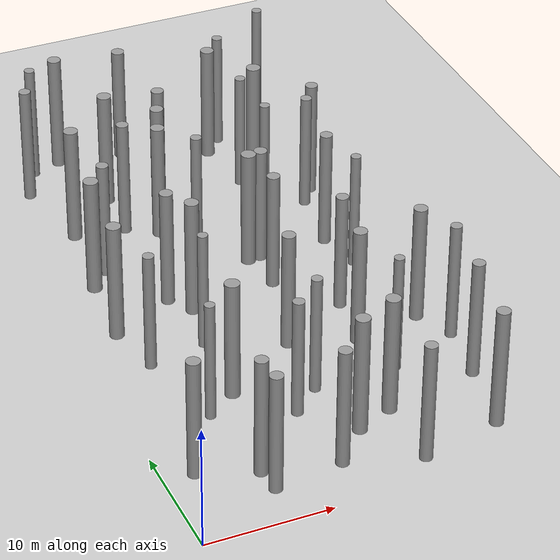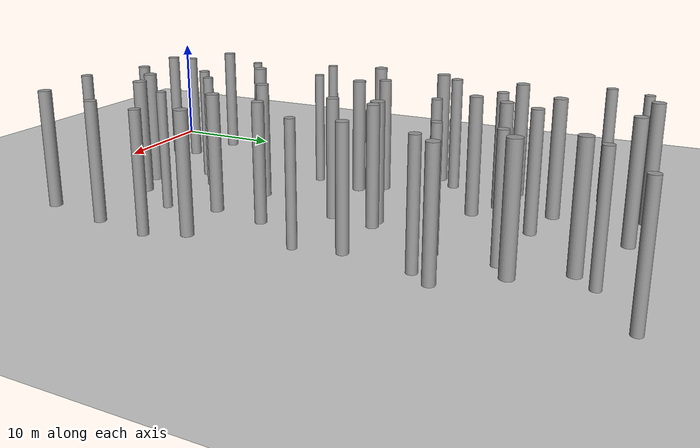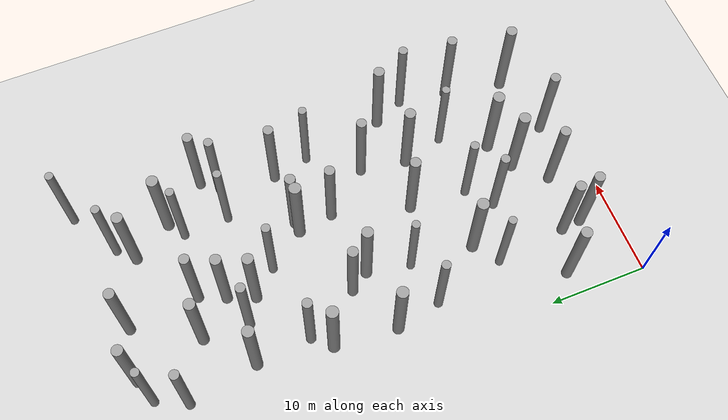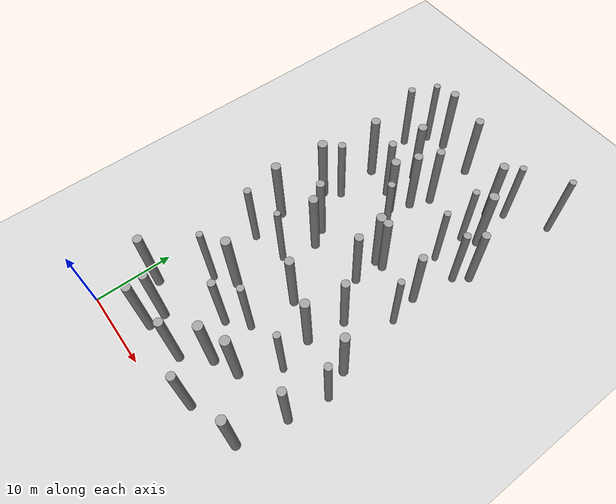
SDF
<sdf version="1.5">
 <world name="default">
  <include><uri>model://sun</uri></include>
  <include><uri>model://ground_plane</uri></include>
  <include><uri>model://asphalt_plane</uri></include>
  <model name="unit_cylinder_0">
   <pose>6.78198 5.60317 5.02000 0 -0 0</pose>
   <link name="link">
    <inertial>
     <mass>100</mass>
     <inertia><ixx>20</ixx><ixy>0</ixy><ixz>0</ixz><iyy>20</iyy><iyz>0</iyz><izz>20</izz></inertia>
    </inertial>
    <collision name="collision">
     <geometry><cylinder><radius>0.523</radius><length>10.000</length></cylinder></geometry>
    </collision>
    <visual name="visual">
     <geometry><cylinder><radius>0.523</radius><length>10.000</length></cylinder></geometry>
     <material>
      <script><name>Gazebo/Grey</name><uri>file://media/materials/scripts/gazebo.material</uri></script>
     </material>
    </visual>
   </link>
  </model>
  <model name="unit_cylinder_1">
   <pose>7.00327 3.52950 5.02000 0 -0 0</pose>
   <link name="link">
    <inertial>
     <mass>100</mass>
     <inertia><ixx>20</ixx><ixy>0</ixy><ixz>0</ixz><iyy>20</iyy><iyz>0</iyz><izz>20</izz></inertia>
    </inertial>
    <collision name="collision">
     <geometry><cylinder><radius>0.523</radius><length>10.000</length></cylinder></geometry>
    </collision>
    <visual name="visual">
     <geometry><cylinder><radius>0.523</radius><length>10.000</length></cylinder></geometry>
     <material>
      <script><name>Gazebo/Grey</name><uri>file://media/materials/scripts/gazebo.material</uri></script>
     </material>
    </visual>
   </link>
  </model>
  <model name="unit_cylinder_2">
   <pose>12.53884 4.29364 5.02000 0 -0 0</pose>
   <link name="link">
    <inertial>
     <mass>100</mass>
     <inertia><ixx>20</ixx><ixy>0</ixy><ixz>0</ixz><iyy>20</iyy><iyz>0</iyz><izz>20</izz></inertia>
    </inertial>
    <collision name="collision">
     <geometry><cylinder><radius>0.518</radius><length>10.000</length></cylinder></geometry>
    </collision>
    <visual name="visual">
     <geometry><cylinder><radius>0.518</radius><length>10.000</length></cylinder></geometry>
     <material>
      <script><name>Gazebo/Grey</name><uri>file://media/materials/scripts/gazebo.material</uri></script>
     </material>
    </visual>
   </link>
  </model>
  <model name="unit_cylinder_3">
   <pose>18.27836 2.49734 5.02000 0 -0 0</pose>
   <link name="link">
    <inertial>
     <mass>100</mass>
     <inertia><ixx>20</ixx><ixy>0</ixy><ixz>0</ixz><iyy>20</iyy><iyz>0</iyz><izz>20</izz></inertia>
    </inertial>
    <collision name="collision">
     <geometry><cylinder><radius>0.497</radius><length>10.000</length></cylinder></geometry>
    </collision>
    <visual name="visual">
     <geometry><cylinder><radius>0.497</radius><length>10.000</length></cylinder></geometry>
     <material>
      <script><name>Gazebo/Grey</name><uri>file://media/materials/scripts/gazebo.material</uri></script>
     </material>
    </visual>
   </link>
  </model>
  <model name="unit_cylinder_4">
   <pose>24.80579 4.12080 5.02000 0 -0 0</pose>
   <link name="link">
    <inertial>
     <mass>100</mass>
     <inertia><ixx>20</ixx><ixy>0</ixy><ixz>0</ixz><iyy>20</iyy><iyz>0</iyz><izz>20</izz></inertia>
    </inertial>
    <collision name="collision">
     <geometry><cylinder><radius>0.541</radius><length>10.000</length></cylinder></geometry>
    </collision>
    <visual name="visual">
     <geometry><cylinder><radius>0.541</radius><length>10.000</length></cylinder></geometry>
     <material>
      <script><name>Gazebo/Grey</name><uri>file://media/materials/scripts/gazebo.material</uri></script>
     </material>
    </visual>
   </link>
  </model>
  <model name="unit_cylinder_10">
   <pose>2.38377 7.27922 5.02000 0 -0 0</pose>
   <link name="link">
    <inertial>
     <mass>100</mass>
     <inertia><ixx>20</ixx><ixy>0</ixy><ixz>0</ixz><iyy>20</iyy><iyz>0</iyz><izz>20</izz></inertia>
    </inertial>
    <collision name="collision">
     <geometry><cylinder><radius>0.546</radius><length>10.000</length></cylinder></geometry>
    </collision>
    <visual name="visual">
     <geometry><cylinder><radius>0.546</radius><length>10.000</length></cylinder></geometry>
     <material>
      <script><name>Gazebo/Grey</name><uri>file://media/materials/scripts/gazebo.material</uri></script>
     </material>
    </visual>
   </link>
  </model>
  <model name="unit_cylinder_11">
   <pose>11.96303 10.88422 5.02000 0 -0 0</pose>
   <link name="link">
    <inertial>
     <mass>100</mass>
     <inertia><ixx>20</ixx><ixy>0</ixy><ixz>0</ixz><iyy>20</iyy><iyz>0</iyz><izz>20</izz></inertia>
    </inertial>
    <collision name="collision">
     <geometry><cylinder><radius>0.463</radius><length>10.000</length></cylinder></geometry>
    </collision>
    <visual name="visual">
     <geometry><cylinder><radius>0.463</radius><length>10.000</length></cylinder></geometry>
     <material>
      <script><name>Gazebo/Grey</name><uri>file://media/materials/scripts/gazebo.material</uri></script>
     </material>
    </visual>
   </link>
  </model>
  <model name="unit_cylinder_12">
   <pose>15.30151 7.25706 5.02000 0 -0 0</pose>
   <link name="link">
    <inertial>
     <mass>100</mass>
     <inertia><ixx>20</ixx><ixy>0</ixy><ixz>0</ixz><iyy>20</iyy><iyz>0</iyz><izz>20</izz></inertia>
    </inertial>
    <collision name="collision">
     <geometry><cylinder><radius>0.576</radius><length>10.000</length></cylinder></geometry>
    </collision>
    <visual name="visual">
     <geometry><cylinder><radius>0.576</radius><length>10.000</length></cylinder></geometry>
     <material>
      <script><name>Gazebo/Grey</name><uri>file://media/materials/scripts/gazebo.material</uri></script>
     </material>
    </visual>
   </link>
  </model>
  <model name="unit_cylinder_13">
   <pose>18.31864 8.57995 5.02000 0 -0 0</pose>
   <link name="link">
    <inertial>
     <mass>100</mass>
     <inertia><ixx>20</ixx><ixy>0</ixy><ixz>0</ixz><iyy>20</iyy><iyz>0</iyz><izz>20</izz></inertia>
    </inertial>
    <collision name="collision">
     <geometry><cylinder><radius>0.579</radius><length>10.000</length></cylinder></geometry>
    </collision>
    <visual name="visual">
     <geometry><cylinder><radius>0.579</radius><length>10.000</length></cylinder></geometry>
     <material>
      <script><name>Gazebo/Grey</name><uri>file://media/materials/scripts/gazebo.material</uri></script>
     </material>
    </visual>
   </link>
  </model>
  <model name="unit_cylinder_14">
   <pose>25.96653 10.12796 5.02000 0 -0 0</pose>
   <link name="link">
    <inertial>
     <mass>100</mass>
     <inertia><ixx>20</ixx><ixy>0</ixy><ixz>0</ixz><iyy>20</iyy><iyz>0</iyz><izz>20</izz></inertia>
    </inertial>
    <collision name="collision">
     <geometry><cylinder><radius>0.497</radius><length>10.000</length></cylinder></geometry>
    </collision>
    <visual name="visual">
     <geometry><cylinder><radius>0.497</radius><length>10.000</length></cylinder></geometry>
     <material>
      <script><name>Gazebo/Grey</name><uri>file://media/materials/scripts/gazebo.material</uri></script>
     </material>
    </visual>
   </link>
  </model>
  <model name="unit_cylinder_20">
   <pose>5.97836 13.00157 5.02000 0 -0 0</pose>
   <link name="link">
    <inertial>
     <mass>100</mass>
     <inertia><ixx>20</ixx><ixy>0</ixy><ixz>0</ixz><iyy>20</iyy><iyz>0</iyz><izz>20</izz></inertia>
    </inertial>
    <collision name="collision">
     <geometry><cylinder><radius>0.407</radius><length>10.000</length></cylinder></geometry>
    </collision>
    <visual name="visual">
     <geometry><cylinder><radius>0.407</radius><length>10.000</length></cylinder></geometry>
     <material>
      <script><name>Gazebo/Grey</name><uri>file://media/materials/scripts/gazebo.material</uri></script>
     </material>
    </visual>
   </link>
  </model>
  <model name="unit_cylinder_21">
   <pose>8.47928 14.81799 5.02000 0 -0 0</pose>
   <link name="link">
    <inertial>
     <mass>100</mass>
     <inertia><ixx>20</ixx><ixy>0</ixy><ixz>0</ixz><iyy>20</iyy><iyz>0</iyz><izz>20</izz></inertia>
    </inertial>
    <collision name="collision">
     <geometry><cylinder><radius>0.591</radius><length>10.000</length></cylinder></geometry>
    </collision>
    <visual name="visual">
     <geometry><cylinder><radius>0.591</radius><length>10.000</length></cylinder></geometry>
     <material>
      <script><name>Gazebo/Grey</name><uri>file://media/materials/scripts/gazebo.material</uri></script>
     </material>
    </visual>
   </link>
  </model>
  <model name="unit_cylinder_22">
   <pose>14.33526 12.97418 5.02000 0 -0 0</pose>
   <link name="link">
    <inertial>
     <mass>100</mass>
     <inertia><ixx>20</ixx><ixy>0</ixy><ixz>0</ixz><iyy>20</iyy><iyz>0</iyz><izz>20</izz></inertia>
    </inertial>
    <collision name="collision">
     <geometry><cylinder><radius>0.434</radius><length>10.000</length></cylinder></geometry>
    </collision>
    <visual name="visual">
     <geometry><cylinder><radius>0.434</radius><length>10.000</length></cylinder></geometry>
     <material>
      <script><name>Gazebo/Grey</name><uri>file://media/materials/scripts/gazebo.material</uri></script>
     </material>
    </visual>
   </link>
  </model>
  <model name="unit_cylinder_23">
   <pose>20.95681 13.01195 5.02000 0 -0 0</pose>
   <link name="link">
    <inertial>
     <mass>100</mass>
     <inertia><ixx>20</ixx><ixy>0</ixy><ixz>0</ixz><iyy>20</iyy><iyz>0</iyz><izz>20</izz></inertia>
    </inertial>
    <collision name="collision">
     <geometry><cylinder><radius>0.402</radius><length>10.000</length></cylinder></geometry>
    </collision>
    <visual name="visual">
     <geometry><cylinder><radius>0.402</radius><length>10.000</length></cylinder></geometry>
     <material>
      <script><name>Gazebo/Grey</name><uri>file://media/materials/scripts/gazebo.material</uri></script>
     </material>
    </visual>
   </link>
  </model>
  <model name="unit_cylinder_24">
   <pose>26.69320 15.12144 5.02000 0 -0 0</pose>
   <link name="link">
    <inertial>
     <mass>100</mass>
     <inertia><ixx>20</ixx><ixy>0</ixy><ixz>0</ixz><iyy>20</iyy><iyz>0</iyz><izz>20</izz></inertia>
    </inertial>
    <collision name="collision">
     <geometry><cylinder><radius>0.455</radius><length>10.000</length></cylinder></geometry>
    </collision>
    <visual name="visual">
     <geometry><cylinder><radius>0.455</radius><length>10.000</length></cylinder></geometry>
     <material>
      <script><name>Gazebo/Grey</name><uri>file://media/materials/scripts/gazebo.material</uri></script>
     </material>
    </visual>
   </link>
  </model>
  <model name="unit_cylinder_30">
   <pose>4.21066 20.43638 5.02000 0 -0 0</pose>
   <link name="link">
    <inertial>
     <mass>100</mass>
     <inertia><ixx>20</ixx><ixy>0</ixy><ixz>0</ixz><iyy>20</iyy><iyz>0</iyz><izz>20</izz></inertia>
    </inertial>
    <collision name="collision">
     <geometry><cylinder><radius>0.449</radius><length>10.000</length></cylinder></geometry>
    </collision>
    <visual name="visual">
     <geometry><cylinder><radius>0.449</radius><length>10.000</length></cylinder></geometry>
     <material>
      <script><name>Gazebo/Grey</name><uri>file://media/materials/scripts/gazebo.material</uri></script>
     </material>
    </visual>
   </link>
  </model>
  <model name="unit_cylinder_31">
   <pose>8.88682 21.38482 5.02000 0 -0 0</pose>
   <link name="link">
    <inertial>
     <mass>100</mass>
     <inertia><ixx>20</ixx><ixy>0</ixy><ixz>0</ixz><iyy>20</iyy><iyz>0</iyz><izz>20</izz></inertia>
    </inertial>
    <collision name="collision">
     <geometry><cylinder><radius>0.407</radius><length>10.000</length></cylinder></geometry>
    </collision>
    <visual name="visual">
     <geometry><cylinder><radius>0.407</radius><length>10.000</length></cylinder></geometry>
     <material>
      <script><name>Gazebo/Grey</name><uri>file://media/materials/scripts/gazebo.material</uri></script>
     </material>
    </visual>
   </link>
  </model>
  <model name="unit_cylinder_32">
   <pose>14.76007 18.90415 5.02000 0 -0 0</pose>
   <link name="link">
    <inertial>
     <mass>100</mass>
     <inertia><ixx>20</ixx><ixy>0</ixy><ixz>0</ixz><iyy>20</iyy><iyz>0</iyz><izz>20</izz></inertia>
    </inertial>
    <collision name="collision">
     <geometry><cylinder><radius>0.541</radius><length>10.000</length></cylinder></geometry>
    </collision>
    <visual name="visual">
     <geometry><cylinder><radius>0.541</radius><length>10.000</length></cylinder></geometry>
     <material>
      <script><name>Gazebo/Grey</name><uri>file://media/materials/scripts/gazebo.material</uri></script>
     </material>
    </visual>
   </link>
  </model>
  <model name="unit_cylinder_33">
   <pose>19.83164 17.28732 5.02000 0 -0 0</pose>
   <link name="link">
    <inertial>
     <mass>100</mass>
     <inertia><ixx>20</ixx><ixy>0</ixy><ixz>0</ixz><iyy>20</iyy><iyz>0</iyz><izz>20</izz></inertia>
    </inertial>
    <collision name="collision">
     <geometry><cylinder><radius>0.552</radius><length>10.000</length></cylinder></geometry>
    </collision>
    <visual name="visual">
     <geometry><cylinder><radius>0.552</radius><length>10.000</length></cylinder></geometry>
     <material>
      <script><name>Gazebo/Grey</name><uri>file://media/materials/scripts/gazebo.material</uri></script>
     </material>
    </visual>
   </link>
  </model>
  <model name="unit_cylinder_34">
   <pose>25.30924 18.27673 5.02000 0 -0 0</pose>
   <link name="link">
    <inertial>
     <mass>100</mass>
     <inertia><ixx>20</ixx><ixy>0</ixy><ixz>0</ixz><iyy>20</iyy><iyz>0</iyz><izz>20</izz></inertia>
    </inertial>
    <collision name="collision">
     <geometry><cylinder><radius>0.543</radius><length>10.000</length></cylinder></geometry>
    </collision>
    <visual name="visual">
     <geometry><cylinder><radius>0.543</radius><length>10.000</length></cylinder></geometry>
     <material>
      <script><name>Gazebo/Grey</name><uri>file://media/materials/scripts/gazebo.material</uri></script>
     </material>
    </visual>
   </link>
  </model>
  <model name="unit_cylinder_40">
   <pose>3.25371 25.08927 5.02000 0 -0 0</pose>
   <link name="link">
    <inertial>
     <mass>100</mass>
     <inertia><ixx>20</ixx><ixy>0</ixy><ixz>0</ixz><iyy>20</iyy><iyz>0</iyz><izz>20</izz></inertia>
    </inertial>
    <collision name="collision">
     <geometry><cylinder><radius>0.580</radius><length>10.000</length></cylinder></geometry>
    </collision>
    <visual name="visual">
     <geometry><cylinder><radius>0.580</radius><length>10.000</length></cylinder></geometry>
     <material>
      <script><name>Gazebo/Grey</name><uri>file://media/materials/scripts/gazebo.material</uri></script>
     </material>
    </visual>
   </link>
  </model>
  <model name="unit_cylinder_41">
   <pose>9.79973 25.79322 5.02000 0 -0 0</pose>
   <link name="link">
    <inertial>
     <mass>100</mass>
     <inertia><ixx>20</ixx><ixy>0</ixy><ixz>0</ixz><iyy>20</iyy><iyz>0</iyz><izz>20</izz></inertia>
    </inertial>
    <collision name="collision">
     <geometry><cylinder><radius>0.564</radius><length>10.000</length></cylinder></geometry>
    </collision>
    <visual name="visual">
     <geometry><cylinder><radius>0.564</radius><length>10.000</length></cylinder></geometry>
     <material>
      <script><name>Gazebo/Grey</name><uri>file://media/materials/scripts/gazebo.material</uri></script>
     </material>
    </visual>
   </link>
  </model>
  <model name="unit_cylinder_42">
   <pose>16.95326 26.72882 5.02000 0 -0 0</pose>
   <link name="link">
    <inertial>
     <mass>100</mass>
     <inertia><ixx>20</ixx><ixy>0</ixy><ixz>0</ixz><iyy>20</iyy><iyz>0</iyz><izz>20</izz></inertia>
    </inertial>
    <collision name="collision">
     <geometry><cylinder><radius>0.514</radius><length>10.000</length></cylinder></geometry>
    </collision>
    <visual name="visual">
     <geometry><cylinder><radius>0.514</radius><length>10.000</length></cylinder></geometry>
     <material>
      <script><name>Gazebo/Grey</name><uri>file://media/materials/scripts/gazebo.material</uri></script>
     </material>
    </visual>
   </link>
  </model>
  <model name="unit_cylinder_43">
   <pose>20.57524 22.03343 5.02000 0 -0 0</pose>
   <link name="link">
    <inertial>
     <mass>100</mass>
     <inertia><ixx>20</ixx><ixy>0</ixy><ixz>0</ixz><iyy>20</iyy><iyz>0</iyz><izz>20</izz></inertia>
    </inertial>
    <collision name="collision">
     <geometry><cylinder><radius>0.496</radius><length>10.000</length></cylinder></geometry>
    </collision>
    <visual name="visual">
     <geometry><cylinder><radius>0.496</radius><length>10.000</length></cylinder></geometry>
     <material>
      <script><name>Gazebo/Grey</name><uri>file://media/materials/scripts/gazebo.material</uri></script>
     </material>
    </visual>
   </link>
  </model>
  <model name="unit_cylinder_44">
   <pose>23.97057 26.81925 5.02000 0 -0 0</pose>
   <link name="link">
    <inertial>
     <mass>100</mass>
     <inertia><ixx>20</ixx><ixy>0</ixy><ixz>0</ixz><iyy>20</iyy><iyz>0</iyz><izz>20</izz></inertia>
    </inertial>
    <collision name="collision">
     <geometry><cylinder><radius>0.404</radius><length>10.000</length></cylinder></geometry>
    </collision>
    <visual name="visual">
     <geometry><cylinder><radius>0.404</radius><length>10.000</length></cylinder></geometry>
     <material>
      <script><name>Gazebo/Grey</name><uri>file://media/materials/scripts/gazebo.material</uri></script>
     </material>
    </visual>
   </link>
  </model>
  <model name="unit_cylinder_50">
   <pose>3.85400 31.55602 5.02000 0 -0 0</pose>
   <link name="link">
    <inertial>
     <mass>100</mass>
     <inertia><ixx>20</ixx><ixy>0</ixy><ixz>0</ixz><iyy>20</iyy><iyz>0</iyz><izz>20</izz></inertia>
    </inertial>
    <collision name="collision">
     <geometry><cylinder><radius>0.597</radius><length>10.000</length></cylinder></geometry>
    </collision>
    <visual name="visual">
     <geometry><cylinder><radius>0.597</radius><length>10.000</length></cylinder></geometry>
     <material>
      <script><name>Gazebo/Grey</name><uri>file://media/materials/scripts/gazebo.material</uri></script>
     </material>
    </visual>
   </link>
  </model>
  <model name="unit_cylinder_51">
   <pose>8.51183 27.75091 5.02000 0 -0 0</pose>
   <link name="link">
    <inertial>
     <mass>100</mass>
     <inertia><ixx>20</ixx><ixy>0</ixy><ixz>0</ixz><iyy>20</iyy><iyz>0</iyz><izz>20</izz></inertia>
    </inertial>
    <collision name="collision">
     <geometry><cylinder><radius>0.530</radius><length>10.000</length></cylinder></geometry>
    </collision>
    <visual name="visual">
     <geometry><cylinder><radius>0.530</radius><length>10.000</length></cylinder></geometry>
     <material>
      <script><name>Gazebo/Grey</name><uri>file://media/materials/scripts/gazebo.material</uri></script>
     </material>
    </visual>
   </link>
  </model>
  <model name="unit_cylinder_52">
   <pose>16.43473 30.38376 5.02000 0 -0 0</pose>
   <link name="link">
    <inertial>
     <mass>100</mass>
     <inertia><ixx>20</ixx><ixy>0</ixy><ixz>0</ixz><iyy>20</iyy><iyz>0</iyz><izz>20</izz></inertia>
    </inertial>
    <collision name="collision">
     <geometry><cylinder><radius>0.593</radius><length>10.000</length></cylinder></geometry>
    </collision>
    <visual name="visual">
     <geometry><cylinder><radius>0.593</radius><length>10.000</length></cylinder></geometry>
     <material>
      <script><name>Gazebo/Grey</name><uri>file://media/materials/scripts/gazebo.material</uri></script>
     </material>
    </visual>
   </link>
  </model>
  <model name="unit_cylinder_53">
   <pose>17.50073 30.48200 5.02000 0 -0 0</pose>
   <link name="link">
    <inertial>
     <mass>100</mass>
     <inertia><ixx>20</ixx><ixy>0</ixy><ixz>0</ixz><iyy>20</iyy><iyz>0</iyz><izz>20</izz></inertia>
    </inertial>
    <collision name="collision">
     <geometry><cylinder><radius>0.528</radius><length>10.000</length></cylinder></geometry>
    </collision>
    <visual name="visual">
     <geometry><cylinder><radius>0.528</radius><length>10.000</length></cylinder></geometry>
     <material>
      <script><name>Gazebo/Grey</name><uri>file://media/materials/scripts/gazebo.material</uri></script>
     </material>
    </visual>
   </link>
  </model>
  <model name="unit_cylinder_54">
   <pose>23.17648 30.59649 5.02000 0 -0 0</pose>
   <link name="link">
    <inertial>
     <mass>100</mass>
     <inertia><ixx>20</ixx><ixy>0</ixy><ixz>0</ixz><iyy>20</iyy><iyz>0</iyz><izz>20</izz></inertia>
    </inertial>
    <collision name="collision">
     <geometry><cylinder><radius>0.500</radius><length>10.000</length></cylinder></geometry>
    </collision>
    <visual name="visual">
     <geometry><cylinder><radius>0.500</radius><length>10.000</length></cylinder></geometry>
     <material>
      <script><name>Gazebo/Grey</name><uri>file://media/materials/scripts/gazebo.material</uri></script>
     </material>
    </visual>
   </link>
  </model>
  <model name="unit_cylinder_60">
   <pose>5.44725 33.31540 5.02000 0 -0 0</pose>
   <link name="link">
    <inertial>
     <mass>100</mass>
     <inertia><ixx>20</ixx><ixy>0</ixy><ixz>0</ixz><iyy>20</iyy><iyz>0</iyz><izz>20</izz></inertia>
    </inertial>
    <collision name="collision">
     <geometry><cylinder><radius>0.489</radius><length>10.000</length></cylinder></geometry>
    </collision>
    <visual name="visual">
     <geometry><cylinder><radius>0.489</radius><length>10.000</length></cylinder></geometry>
     <material>
      <script><name>Gazebo/Grey</name><uri>file://media/materials/scripts/gazebo.material</uri></script>
     </material>
    </visual>
   </link>
  </model>
  <model name="unit_cylinder_61">
   <pose>11.37709 36.79684 5.02000 0 -0 0</pose>
   <link name="link">
    <inertial>
     <mass>100</mass>
     <inertia><ixx>20</ixx><ixy>0</ixy><ixz>0</ixz><iyy>20</iyy><iyz>0</iyz><izz>20</izz></inertia>
    </inertial>
    <collision name="collision">
     <geometry><cylinder><radius>0.550</radius><length>10.000</length></cylinder></geometry>
    </collision>
    <visual name="visual">
     <geometry><cylinder><radius>0.550</radius><length>10.000</length></cylinder></geometry>
     <material>
      <script><name>Gazebo/Grey</name><uri>file://media/materials/scripts/gazebo.material</uri></script>
     </material>
    </visual>
   </link>
  </model>
  <model name="unit_cylinder_62">
   <pose>13.62546 34.25820 5.02000 0 -0 0</pose>
   <link name="link">
    <inertial>
     <mass>100</mass>
     <inertia><ixx>20</ixx><ixy>0</ixy><ixz>0</ixz><iyy>20</iyy><iyz>0</iyz><izz>20</izz></inertia>
    </inertial>
    <collision name="collision">
     <geometry><cylinder><radius>0.440</radius><length>10.000</length></cylinder></geometry>
    </collision>
    <visual name="visual">
     <geometry><cylinder><radius>0.440</radius><length>10.000</length></cylinder></geometry>
     <material>
      <script><name>Gazebo/Grey</name><uri>file://media/materials/scripts/gazebo.material</uri></script>
     </material>
    </visual>
   </link>
  </model>
  <model name="unit_cylinder_63">
   <pose>20.52556 36.62485 5.02000 0 -0 0</pose>
   <link name="link">
    <inertial>
     <mass>100</mass>
     <inertia><ixx>20</ixx><ixy>0</ixy><ixz>0</ixz><iyy>20</iyy><iyz>0</iyz><izz>20</izz></inertia>
    </inertial>
    <collision name="collision">
     <geometry><cylinder><radius>0.407</radius><length>10.000</length></cylinder></geometry>
    </collision>
    <visual name="visual">
     <geometry><cylinder><radius>0.407</radius><length>10.000</length></cylinder></geometry>
     <material>
      <script><name>Gazebo/Grey</name><uri>file://media/materials/scripts/gazebo.material</uri></script>
     </material>
    </visual>
   </link>
  </model>
  <model name="unit_cylinder_64">
   <pose>24.02798 36.32609 5.02000 0 -0 0</pose>
   <link name="link">
    <inertial>
     <mass>100</mass>
     <inertia><ixx>20</ixx><ixy>0</ixy><ixz>0</ixz><iyy>20</iyy><iyz>0</iyz><izz>20</izz></inertia>
    </inertial>
    <collision name="collision">
     <geometry><cylinder><radius>0.452</radius><length>10.000</length></cylinder></geometry>
    </collision>
    <visual name="visual">
     <geometry><cylinder><radius>0.452</radius><length>10.000</length></cylinder></geometry>
     <material>
      <script><name>Gazebo/Grey</name><uri>file://media/materials/scripts/gazebo.material</uri></script>
     </material>
    </visual>
   </link>
  </model>
  <model name="unit_cylinder_70">
   <pose>4.93052 39.02753 5.02000 0 -0 0</pose>
   <link name="link">
    <inertial>
     <mass>100</mass>
     <inertia><ixx>20</ixx><ixy>0</ixy><ixz>0</ixz><iyy>20</iyy><iyz>0</iyz><izz>20</izz></inertia>
    </inertial>
    <collision name="collision">
     <geometry><cylinder><radius>0.578</radius><length>10.000</length></cylinder></geometry>
    </collision>
    <visual name="visual">
     <geometry><cylinder><radius>0.578</radius><length>10.000</length></cylinder></geometry>
     <material>
      <script><name>Gazebo/Grey</name><uri>file://media/materials/scripts/gazebo.material</uri></script>
     </material>
    </visual>
   </link>
  </model>
  <model name="unit_cylinder_71">
   <pose>9.00303 38.32814 5.02000 0 -0 0</pose>
   <link name="link">
    <inertial>
     <mass>100</mass>
     <inertia><ixx>20</ixx><ixy>0</ixy><ixz>0</ixz><iyy>20</iyy><iyz>0</iyz><izz>20</izz></inertia>
    </inertial>
    <collision name="collision">
     <geometry><cylinder><radius>0.490</radius><length>10.000</length></cylinder></geometry>
    </collision>
    <visual name="visual">
     <geometry><cylinder><radius>0.490</radius><length>10.000</length></cylinder></geometry>
     <material>
      <script><name>Gazebo/Grey</name><uri>file://media/materials/scripts/gazebo.material</uri></script>
     </material>
    </visual>
   </link>
  </model>
  <model name="unit_cylinder_72">
   <pose>12.38694 39.50701 5.02000 0 -0 0</pose>
   <link name="link">
    <inertial>
     <mass>100</mass>
     <inertia><ixx>20</ixx><ixy>0</ixy><ixz>0</ixz><iyy>20</iyy><iyz>0</iyz><izz>20</izz></inertia>
    </inertial>
    <collision name="collision">
     <geometry><cylinder><radius>0.544</radius><length>10.000</length></cylinder></geometry>
    </collision>
    <visual name="visual">
     <geometry><cylinder><radius>0.544</radius><length>10.000</length></cylinder></geometry>
     <material>
      <script><name>Gazebo/Grey</name><uri>file://media/materials/scripts/gazebo.material</uri></script>
     </material>
    </visual>
   </link>
  </model>
  <model name="unit_cylinder_73">
   <pose>20.36585 41.29245 5.02000 0 -0 0</pose>
   <link name="link">
    <inertial>
     <mass>100</mass>
     <inertia><ixx>20</ixx><ixy>0</ixy><ixz>0</ixz><iyy>20</iyy><iyz>0</iyz><izz>20</izz></inertia>
    </inertial>
    <collision name="collision">
     <geometry><cylinder><radius>0.425</radius><length>10.000</length></cylinder></geometry>
    </collision>
    <visual name="visual">
     <geometry><cylinder><radius>0.425</radius><length>10.000</length></cylinder></geometry>
     <material>
      <script><name>Gazebo/Grey</name><uri>file://media/materials/scripts/gazebo.material</uri></script>
     </material>
    </visual>
   </link>
  </model>
  <model name="unit_cylinder_74">
   <pose>25.25447 38.00733 5.02000 0 -0 0</pose>
   <link name="link">
    <inertial>
     <mass>100</mass>
     <inertia><ixx>20</ixx><ixy>0</ixy><ixz>0</ixz><iyy>20</iyy><iyz>0</iyz><izz>20</izz></inertia>
    </inertial>
    <collision name="collision">
     <geometry><cylinder><radius>0.497</radius><length>10.000</length></cylinder></geometry>
    </collision>
    <visual name="visual">
     <geometry><cylinder><radius>0.497</radius><length>10.000</length></cylinder></geometry>
     <material>
      <script><name>Gazebo/Grey</name><uri>file://media/materials/scripts/gazebo.material</uri></script>
     </material>
    </visual>
   </link>
  </model>
  <model name="unit_cylinder_80">
   <pose>3.60058 46.16587 5.02000 0 -0 0</pose>
   <link name="link">
    <inertial>
     <mass>100</mass>
     <inertia><ixx>20</ixx><ixy>0</ixy><ixz>0</ixz><iyy>20</iyy><iyz>0</iyz><izz>20</izz></inertia>
    </inertial>
    <collision name="collision">
     <geometry><cylinder><radius>0.475</radius><length>10.000</length></cylinder></geometry>
    </collision>
    <visual name="visual">
     <geometry><cylinder><radius>0.475</radius><length>10.000</length></cylinder></geometry>
     <material>
      <script><name>Gazebo/Grey</name><uri>file://media/materials/scripts/gazebo.material</uri></script>
     </material>
    </visual>
   </link>
  </model>
  <model name="unit_cylinder_81">
   <pose>9.21588 43.00077 5.02000 0 -0 0</pose>
   <link name="link">
    <inertial>
     <mass>100</mass>
     <inertia><ixx>20</ixx><ixy>0</ixy><ixz>0</ixz><iyy>20</iyy><iyz>0</iyz><izz>20</izz></inertia>
    </inertial>
    <collision name="collision">
     <geometry><cylinder><radius>0.570</radius><length>10.000</length></cylinder></geometry>
    </collision>
    <visual name="visual">
     <geometry><cylinder><radius>0.570</radius><length>10.000</length></cylinder></geometry>
     <material>
      <script><name>Gazebo/Grey</name><uri>file://media/materials/scripts/gazebo.material</uri></script>
     </material>
    </visual>
   </link>
  </model>
  <model name="unit_cylinder_82">
   <pose>13.47818 42.11097 5.02000 0 -0 0</pose>
   <link name="link">
    <inertial>
     <mass>100</mass>
     <inertia><ixx>20</ixx><ixy>0</ixy><ixz>0</ixz><iyy>20</iyy><iyz>0</iyz><izz>20</izz></inertia>
    </inertial>
    <collision name="collision">
     <geometry><cylinder><radius>0.512</radius><length>10.000</length></cylinder></geometry>
    </collision>
    <visual name="visual">
     <geometry><cylinder><radius>0.512</radius><length>10.000</length></cylinder></geometry>
     <material>
      <script><name>Gazebo/Grey</name><uri>file://media/materials/scripts/gazebo.material</uri></script>
     </material>
    </visual>
   </link>
  </model>
  <model name="unit_cylinder_83">
   <pose>19.65312 46.56141 5.02000 0 -0 0</pose>
   <link name="link">
    <inertial>
     <mass>100</mass>
     <inertia><ixx>20</ixx><ixy>0</ixy><ixz>0</ixz><iyy>20</iyy><iyz>0</iyz><izz>20</izz></inertia>
    </inertial>
    <collision name="collision">
     <geometry><cylinder><radius>0.550</radius><length>10.000</length></cylinder></geometry>
    </collision>
    <visual name="visual">
     <geometry><cylinder><radius>0.550</radius><length>10.000</length></cylinder></geometry>
     <material>
      <script><name>Gazebo/Grey</name><uri>file://media/materials/scripts/gazebo.material</uri></script>
     </material>
    </visual>
   </link>
  </model>
  <model name="unit_cylinder_84">
   <pose>22.05955 42.47276 5.02000 0 -0 0</pose>
   <link name="link">
    <inertial>
     <mass>100</mass>
     <inertia><ixx>20</ixx><ixy>0</ixy><ixz>0</ixz><iyy>20</iyy><iyz>0</iyz><izz>20</izz></inertia>
    </inertial>
    <collision name="collision">
     <geometry><cylinder><radius>0.579</radius><length>10.000</length></cylinder></geometry>
    </collision>
    <visual name="visual">
     <geometry><cylinder><radius>0.579</radius><length>10.000</length></cylinder></geometry>
     <material>
      <script><name>Gazebo/Grey</name><uri>file://media/materials/scripts/gazebo.material</uri></script>
     </material>
    </visual>
   </link>
  </model>
  <model name="unit_cylinder_90">
   <pose>5.05137 49.22791 5.02000 0 -0 0</pose>
   <link name="link">
    <inertial>
     <mass>100</mass>
     <inertia><ixx>20</ixx><ixy>0</ixy><ixz>0</ixz><iyy>20</iyy><iyz>0</iyz><izz>20</izz></inertia>
    </inertial>
    <collision name="collision">
     <geometry><cylinder><radius>0.425</radius><length>10.000</length></cylinder></geometry>
    </collision>
    <visual name="visual">
     <geometry><cylinder><radius>0.425</radius><length>10.000</length></cylinder></geometry>
     <material>
      <script><name>Gazebo/Grey</name><uri>file://media/materials/scripts/gazebo.material</uri></script>
     </material>
    </visual>
   </link>
  </model>
  <model name="unit_cylinder_91">
   <pose>7.48889 50.07477 5.02000 0 -0 0</pose>
   <link name="link">
    <inertial>
     <mass>100</mass>
     <inertia><ixx>20</ixx><ixy>0</ixy><ixz>0</ixz><iyy>20</iyy><iyz>0</iyz><izz>20</izz></inertia>
    </inertial>
    <collision name="collision">
     <geometry><cylinder><radius>0.546</radius><length>10.000</length></cylinder></geometry>
    </collision>
    <visual name="visual">
     <geometry><cylinder><radius>0.546</radius><length>10.000</length></cylinder></geometry>
     <material>
      <script><name>Gazebo/Grey</name><uri>file://media/materials/scripts/gazebo.material</uri></script>
     </material>
    </visual>
   </link>
  </model>
  <model name="unit_cylinder_92">
   <pose>12.78311 49.29923 5.02000 0 -0 0</pose>
   <link name="link">
    <inertial>
     <mass>100</mass>
     <inertia><ixx>20</ixx><ixy>0</ixy><ixz>0</ixz><iyy>20</iyy><iyz>0</iyz><izz>20</izz></inertia>
    </inertial>
    <collision name="collision">
     <geometry><cylinder><radius>0.530</radius><length>10.000</length></cylinder></geometry>
    </collision>
    <visual name="visual">
     <geometry><cylinder><radius>0.530</radius><length>10.000</length></cylinder></geometry>
     <material>
      <script><name>Gazebo/Grey</name><uri>file://media/materials/scripts/gazebo.material</uri></script>
     </material>
    </visual>
   </link>
  </model>
  <model name="unit_cylinder_93">
   <pose>21.20409 48.16676 5.02000 0 -0 0</pose>
   <link name="link">
    <inertial>
     <mass>100</mass>
     <inertia><ixx>20</ixx><ixy>0</ixy><ixz>0</ixz><iyy>20</iyy><iyz>0</iyz><izz>20</izz></inertia>
    </inertial>
    <collision name="collision">
     <geometry><cylinder><radius>0.426</radius><length>10.000</length></cylinder></geometry>
    </collision>
    <visual name="visual">
     <geometry><cylinder><radius>0.426</radius><length>10.000</length></cylinder></geometry>
     <material>
      <script><name>Gazebo/Grey</name><uri>file://media/materials/scripts/gazebo.material</uri></script>
     </material>
    </visual>
   </link>
  </model>
  <model name="unit_cylinder_94">
   <pose>26.12831 51.22474 5.02000 0 -0 0</pose>
   <link name="link">
    <inertial>
     <mass>100</mass>
     <inertia><ixx>20</ixx><ixy>0</ixy><ixz>0</ixz><iyy>20</iyy><iyz>0</iyz><izz>20</izz></inertia>
    </inertial>
    <collision name="collision">
     <geometry><cylinder><radius>0.415</radius><length>10.000</length></cylinder></geometry>
    </collision>
    <visual name="visual">
     <geometry><cylinder><radius>0.415</radius><length>10.000</length></cylinder></geometry>
     <material>
      <script><name>Gazebo/Grey</name><uri>file://media/materials/scripts/gazebo.material</uri></script>
     </material>
    </visual>
   </link>
  </model>
 </world>
</sdf>
